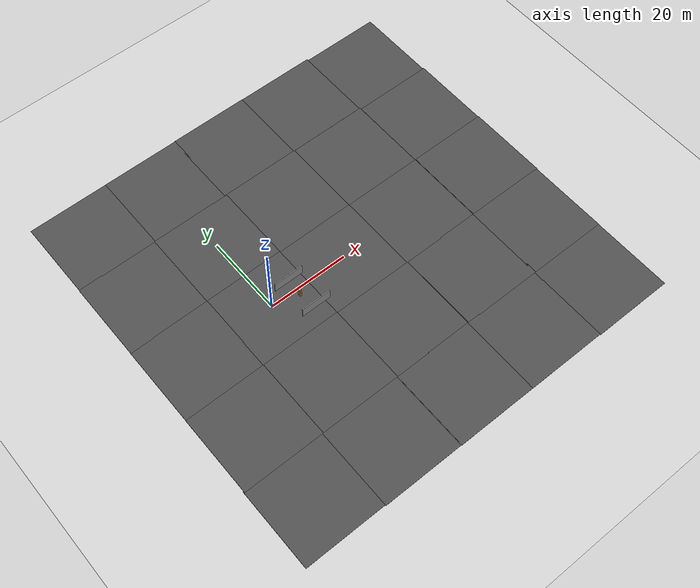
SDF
<sdf version="1.6">
 <world name="default">
  <light name="sun" type="directional">
   <pose>0 0 10 0 -0 0</pose>
   <diffuse>0.8 0.8 0.8 1</diffuse>
   <specular>0.2 0.2 0.2 1</specular>
   <attenuation>
    <range>1000</range>
    <constant>0.9</constant>
    <linear>0.01</linear>
    <quadratic>0.001</quadratic>
   </attenuation>
   <direction>-0.5 0.1 -0.9</direction>
  </light>
  <model name="ground_plane">
   <static>1</static>
   <link name="link">
    <collision name="collision">
     <geometry><plane><normal>0 0 1</normal><size>100 100</size></plane></geometry>
     <surface><friction><ode><mu>100</mu><mu2>50</mu2></ode></friction></surface>
    </collision>
    <visual name="visual">
     <cast_shadows>0</cast_shadows>
     <geometry><plane><normal>0 0 1</normal><size>100 100</size></plane></geometry>
     <material>
      <script><uri>file://media/materials/scripts/gazebo.material</uri><name>Gazebo/Grey</name></script>
     </material>
    </visual>
   </link>
  </model>
  <model name="asphalt_plane">
   <pose>-0.076231 0.037371 0 0 -0 0</pose>
   <static>1</static>
   <link name="link">
    <collision name="collision"><geometry><box><size>20 20 0.1</size></box></geometry></collision>
    <visual name="visual">
     <cast_shadows>0</cast_shadows>
     <geometry><box><size>20 20 0.1</size></box></geometry>
     <material>
      <script>
       <uri>model://asphalt_plane/materials/scripts</uri>
       <uri>model://asphalt_plane/materials/textures</uri>
       <name>vrc/asphalt</name>
      </script>
     </material>
    </visual>
   </link>
  </model>
  <physics name="default_physics" default="0" type="ode">
   <ode>
    <solver>
     <type>quick</type>
     <iters>10</iters>
     <sor>1.3</sor>
     <use_dynamic_moi_rescaling>0</use_dynamic_moi_rescaling>
    </solver>
    <constraints>
     <cfm>0</cfm>
     <erp>0.2</erp>
     <contact_max_correcting_vel>100</contact_max_correcting_vel>
     <contact_surface_layer>0.001</contact_surface_layer>
    </constraints>
   </ode>
   <max_step_size>0.002</max_step_size>
   <real_time_factor>1</real_time_factor>
   <real_time_update_rate>500</real_time_update_rate>
  </physics>
  <gravity>0 0 -9.8066</gravity>
  <magnetic_field>6e-06 2.3e-05 -4.2e-05</magnetic_field>
  <atmosphere type="adiabatic"/>
  <scene><ambient>0.4 0.4 0.4 1</ambient><background>0.7 0.7 0.7 1</background><shadows>1</shadows></scene>
  <spherical_coordinates>
   <surface_model>EARTH_WGS84</surface_model>
   <latitude_deg>0</latitude_deg>
   <longitude_deg>0</longitude_deg>
   <elevation>0</elevation>
   <heading_deg>0</heading_deg>
  </spherical_coordinates>
  <model name="asphalt_plane_clone">
   <static>1</static>
   <link name="link">
    <collision name="collision"><geometry><box><size>20 20 0.1</size></box></geometry></collision>
    <visual name="visual">
     <cast_shadows>0</cast_shadows>
     <geometry><box><size>20 20 0.1</size></box></geometry>
     <material>
      <script>
       <uri>model://asphalt_plane/materials/scripts</uri>
       <uri>model://asphalt_plane/materials/textures</uri>
       <name>vrc/asphalt</name>
      </script>
     </material>
    </visual>
   </link>
   <pose>0.013817 -19.9057 0 0 -0 0</pose>
  </model>
  <model name="asphalt_plane_clone_0">
   <static>1</static>
   <link name="link">
    <collision name="collision"><geometry><box><size>20 20 0.1</size></box></geometry></collision>
    <visual name="visual">
     <cast_shadows>0</cast_shadows>
     <geometry><box><size>20 20 0.1</size></box></geometry>
     <material>
      <script>
       <uri>model://asphalt_plane/materials/scripts</uri>
       <uri>model://asphalt_plane/materials/textures</uri>
       <name>vrc/asphalt</name>
      </script>
     </material>
    </visual>
   </link>
   <pose>-0.044763 19.8547 0 0 -0 0</pose>
  </model>
  <model name="asphalt_plane_clone_1">
   <static>1</static>
   <link name="link">
    <collision name="collision"><geometry><box><size>20 20 0.1</size></box></geometry></collision>
    <visual name="visual">
     <cast_shadows>0</cast_shadows>
     <geometry><box><size>20 20 0.1</size></box></geometry>
     <material>
      <script>
       <uri>model://asphalt_plane/materials/scripts</uri>
       <uri>model://asphalt_plane/materials/textures</uri>
       <name>vrc/asphalt</name>
      </script>
     </material>
    </visual>
   </link>
   <pose>19.9542 19.8571 0 0 -0 0</pose>
  </model>
  <model name="asphalt_plane_clone_2">
   <static>1</static>
   <link name="link">
    <collision name="collision"><geometry><box><size>20 20 0.1</size></box></geometry></collision>
    <visual name="visual">
     <cast_shadows>0</cast_shadows>
     <geometry><box><size>20 20 0.1</size></box></geometry>
     <material>
      <script>
       <uri>model://asphalt_plane/materials/scripts</uri>
       <uri>model://asphalt_plane/materials/textures</uri>
       <name>vrc/asphalt</name>
      </script>
     </material>
    </visual>
   </link>
   <pose>19.9003 -0.111395 0 0 -0 0</pose>
  </model>
  <model name="asphalt_plane_clone_3">
   <static>1</static>
   <link name="link">
    <collision name="collision"><geometry><box><size>20 20 0.1</size></box></geometry></collision>
    <visual name="visual">
     <cast_shadows>0</cast_shadows>
     <geometry><box><size>20 20 0.1</size></box></geometry>
     <material>
      <script>
       <uri>model://asphalt_plane/materials/scripts</uri>
       <uri>model://asphalt_plane/materials/textures</uri>
       <name>vrc/asphalt</name>
      </script>
     </material>
    </visual>
   </link>
   <pose>19.9582 -19.9369 0 0 -0 0</pose>
  </model>
  <model name="asphalt_plane_clone_4">
   <static>1</static>
   <link name="link">
    <collision name="collision"><geometry><box><size>20 20 0.1</size></box></geometry></collision>
    <visual name="visual">
     <cast_shadows>0</cast_shadows>
     <geometry><box><size>20 20 0.1</size></box></geometry>
     <material>
      <script>
       <uri>model://asphalt_plane/materials/scripts</uri>
       <uri>model://asphalt_plane/materials/textures</uri>
       <name>vrc/asphalt</name>
      </script>
     </material>
    </visual>
   </link>
   <pose>-19.9909 -19.9252 0 0 -0 0</pose>
  </model>
  <model name="asphalt_plane_clone_5">
   <static>1</static>
   <link name="link">
    <collision name="collision"><geometry><box><size>20 20 0.1</size></box></geometry></collision>
    <visual name="visual">
     <cast_shadows>0</cast_shadows>
     <geometry><box><size>20 20 0.1</size></box></geometry>
     <material>
      <script>
       <uri>model://asphalt_plane/materials/scripts</uri>
       <uri>model://asphalt_plane/materials/textures</uri>
       <name>vrc/asphalt</name>
      </script>
     </material>
    </visual>
   </link>
   <pose>-19.954 0.062585 0 0 -0 0</pose>
  </model>
  <model name="asphalt_plane_clone_6">
   <static>1</static>
   <link name="link">
    <collision name="collision"><geometry><box><size>20 20 0.1</size></box></geometry></collision>
    <visual name="visual">
     <cast_shadows>0</cast_shadows>
     <geometry><box><size>20 20 0.1</size></box></geometry>
     <material>
      <script>
       <uri>model://asphalt_plane/materials/scripts</uri>
       <uri>model://asphalt_plane/materials/textures</uri>
       <name>vrc/asphalt</name>
      </script>
     </material>
    </visual>
   </link>
   <pose>-19.9182 19.9182 0 0 -0 0</pose>
  </model>
  <model name="asphalt_plane_clone_7">
   <static>1</static>
   <link name="link">
    <collision name="collision"><geometry><box><size>20 20 0.1</size></box></geometry></collision>
    <visual name="visual">
     <cast_shadows>0</cast_shadows>
     <geometry><box><size>20 20 0.1</size></box></geometry>
     <material>
      <script>
       <uri>model://asphalt_plane/materials/scripts</uri>
       <uri>model://asphalt_plane/materials/textures</uri>
       <name>vrc/asphalt</name>
      </script>
     </material>
    </visual>
   </link>
   <pose>40.0111 -19.9805 0 0 -0 0</pose>
  </model>
  <model name="asphalt_plane_clone_8">
   <static>1</static>
   <link name="link">
    <collision name="collision"><geometry><box><size>20 20 0.1</size></box></geometry></collision>
    <visual name="visual">
     <cast_shadows>0</cast_shadows>
     <geometry><box><size>20 20 0.1</size></box></geometry>
     <material>
      <script>
       <uri>model://asphalt_plane/materials/scripts</uri>
       <uri>model://asphalt_plane/materials/textures</uri>
       <name>vrc/asphalt</name>
      </script>
     </material>
    </visual>
   </link>
   <pose>39.7739 -0.180821 0 0 -0 0</pose>
  </model>
  <model name="asphalt_plane_clone_9">
   <static>1</static>
   <link name="link">
    <collision name="collision"><geometry><box><size>20 20 0.1</size></box></geometry></collision>
    <visual name="visual">
     <cast_shadows>0</cast_shadows>
     <geometry><box><size>20 20 0.1</size></box></geometry>
     <material>
      <script>
       <uri>model://asphalt_plane/materials/scripts</uri>
       <uri>model://asphalt_plane/materials/textures</uri>
       <name>vrc/asphalt</name>
      </script>
     </material>
    </visual>
   </link>
   <pose>39.7142 19.7483 0 0 -0 0</pose>
  </model>
  <model name="asphalt_plane_clone_10">
   <static>1</static>
   <link name="link">
    <collision name="collision"><geometry><box><size>20 20 0.1</size></box></geometry></collision>
    <visual name="visual">
     <cast_shadows>0</cast_shadows>
     <geometry><box><size>20 20 0.1</size></box></geometry>
     <material>
      <script>
       <uri>model://asphalt_plane/materials/scripts</uri>
       <uri>model://asphalt_plane/materials/textures</uri>
       <name>vrc/asphalt</name>
      </script>
     </material>
    </visual>
   </link>
   <pose>59.7155 -19.9826 0 0 -0 0</pose>
  </model>
  <model name="asphalt_plane_clone_11">
   <static>1</static>
   <link name="link">
    <collision name="collision"><geometry><box><size>20 20 0.1</size></box></geometry></collision>
    <visual name="visual">
     <cast_shadows>0</cast_shadows>
     <geometry><box><size>20 20 0.1</size></box></geometry>
     <material>
      <script>
       <uri>model://asphalt_plane/materials/scripts</uri>
       <uri>model://asphalt_plane/materials/textures</uri>
       <name>vrc/asphalt</name>
      </script>
     </material>
    </visual>
   </link>
   <pose>59.861 -0.148742 0 0 -0 0</pose>
  </model>
  <model name="asphalt_plane_clone_12">
   <static>1</static>
   <link name="link">
    <collision name="collision"><geometry><box><size>20 20 0.1</size></box></geometry></collision>
    <visual name="visual">
     <cast_shadows>0</cast_shadows>
     <geometry><box><size>20 20 0.1</size></box></geometry>
     <material>
      <script>
       <uri>model://asphalt_plane/materials/scripts</uri>
       <uri>model://asphalt_plane/materials/textures</uri>
       <name>vrc/asphalt</name>
      </script>
     </material>
    </visual>
   </link>
   <pose>59.7223 19.4825 0 0 -0 0</pose>
  </model>
  <model name="asphalt_plane_clone_13">
   <static>1</static>
   <link name="link">
    <collision name="collision"><geometry><box><size>20 20 0.1</size></box></geometry></collision>
    <visual name="visual">
     <cast_shadows>0</cast_shadows>
     <geometry><box><size>20 20 0.1</size></box></geometry>
     <material>
      <script>
       <uri>model://asphalt_plane/materials/scripts</uri>
       <uri>model://asphalt_plane/materials/textures</uri>
       <name>vrc/asphalt</name>
      </script>
     </material>
    </visual>
   </link>
   <pose>59.6505 -39.9751 0 0 -0 0</pose>
  </model>
  <model name="asphalt_plane_clone_14">
   <static>1</static>
   <link name="link">
    <collision name="collision"><geometry><box><size>20 20 0.1</size></box></geometry></collision>
    <visual name="visual">
     <cast_shadows>0</cast_shadows>
     <geometry><box><size>20 20 0.1</size></box></geometry>
     <material>
      <script>
       <uri>model://asphalt_plane/materials/scripts</uri>
       <uri>model://asphalt_plane/materials/textures</uri>
       <name>vrc/asphalt</name>
      </script>
     </material>
    </visual>
   </link>
   <pose>39.7473 -39.8277 0 0 -0 0</pose>
  </model>
  <model name="asphalt_plane_clone_15">
   <static>1</static>
   <link name="link">
    <collision name="collision"><geometry><box><size>20 20 0.1</size></box></geometry></collision>
    <visual name="visual">
     <cast_shadows>0</cast_shadows>
     <geometry><box><size>20 20 0.1</size></box></geometry>
     <material>
      <script>
       <uri>model://asphalt_plane/materials/scripts</uri>
       <uri>model://asphalt_plane/materials/textures</uri>
       <name>vrc/asphalt</name>
      </script>
     </material>
    </visual>
   </link>
   <pose>19.8523 -39.7982 0 0 -0 0</pose>
  </model>
  <model name="asphalt_plane_clone_16">
   <static>1</static>
   <link name="link">
    <collision name="collision"><geometry><box><size>20 20 0.1</size></box></geometry></collision>
    <visual name="visual">
     <cast_shadows>0</cast_shadows>
     <geometry><box><size>20 20 0.1</size></box></geometry>
     <material>
      <script>
       <uri>model://asphalt_plane/materials/scripts</uri>
       <uri>model://asphalt_plane/materials/textures</uri>
       <name>vrc/asphalt</name>
      </script>
     </material>
    </visual>
   </link>
   <pose>-0.244115 -39.7166 0 0 -0 0</pose>
  </model>
  <model name="asphalt_plane_clone_17">
   <static>1</static>
   <link name="link">
    <collision name="collision"><geometry><box><size>20 20 0.1</size></box></geometry></collision>
    <visual name="visual">
     <cast_shadows>0</cast_shadows>
     <geometry><box><size>20 20 0.1</size></box></geometry>
     <material>
      <script>
       <uri>model://asphalt_plane/materials/scripts</uri>
       <uri>model://asphalt_plane/materials/textures</uri>
       <name>vrc/asphalt</name>
      </script>
     </material>
    </visual>
   </link>
   <pose>-20.1655 -39.5155 0 0 -0 0</pose>
  </model>
  <model name="asphalt_plane_clone_14_clone">
   <static>1</static>
   <link name="link">
    <collision name="collision"><geometry><box><size>20 20 0.1</size></box></geometry></collision>
    <visual name="visual">
     <cast_shadows>0</cast_shadows>
     <geometry><box><size>20 20 0.1</size></box></geometry>
     <material>
      <script>
       <uri>model://asphalt_plane/materials/scripts</uri>
       <uri>model://asphalt_plane/materials/textures</uri>
       <name>vrc/asphalt</name>
      </script>
     </material>
    </visual>
   </link>
   <pose>-19.8427 39.7251 0 0 -0 0</pose>
  </model>
  <model name="asphalt_plane_clone_14_clone_0">
   <static>1</static>
   <link name="link">
    <collision name="collision"><geometry><box><size>20 20 0.1</size></box></geometry></collision>
    <visual name="visual">
     <cast_shadows>0</cast_shadows>
     <geometry><box><size>20 20 0.1</size></box></geometry>
     <material>
      <script>
       <uri>model://asphalt_plane/materials/scripts</uri>
       <uri>model://asphalt_plane/materials/textures</uri>
       <name>vrc/asphalt</name>
      </script>
     </material>
    </visual>
   </link>
   <pose>-0.255749 39.7463 0 0 -0 0</pose>
  </model>
  <model name="asphalt_plane_clone_14_clone_1">
   <static>1</static>
   <link name="link">
    <collision name="collision"><geometry><box><size>20 20 0.1</size></box></geometry></collision>
    <visual name="visual">
     <cast_shadows>0</cast_shadows>
     <geometry><box><size>20 20 0.1</size></box></geometry>
     <material>
      <script>
       <uri>model://asphalt_plane/materials/scripts</uri>
       <uri>model://asphalt_plane/materials/textures</uri>
       <name>vrc/asphalt</name>
      </script>
     </material>
    </visual>
   </link>
   <pose>19.4503 39.8337 0 0 -0 0</pose>
  </model>
  <model name="asphalt_plane_clone_14_clone_2">
   <static>1</static>
   <link name="link">
    <collision name="collision"><geometry><box><size>20 20 0.1</size></box></geometry></collision>
    <visual name="visual">
     <cast_shadows>0</cast_shadows>
     <geometry><box><size>20 20 0.1</size></box></geometry>
     <material>
      <script>
       <uri>model://asphalt_plane/materials/scripts</uri>
       <uri>model://asphalt_plane/materials/textures</uri>
       <name>vrc/asphalt</name>
      </script>
     </material>
    </visual>
   </link>
   <pose>39.491 39.7544 0 0 -0 0</pose>
  </model>
  <model name="asphalt_plane_clone_14_clone_3">
   <static>1</static>
   <link name="link">
    <collision name="collision"><geometry><box><size>20 20 0.1</size></box></geometry></collision>
    <visual name="visual">
     <cast_shadows>0</cast_shadows>
     <geometry><box><size>20 20 0.1</size></box></geometry>
     <material>
      <script>
       <uri>model://asphalt_plane/materials/scripts</uri>
       <uri>model://asphalt_plane/materials/textures</uri>
       <name>vrc/asphalt</name>
      </script>
     </material>
    </visual>
   </link>
   <pose>59.4529 39.3338 0 0 -0 0</pose>
  </model>
  <audio><device>default</device></audio>
  <model name="grey_wall">
   <static>1</static>
   <link name="link">
    <pose>0 0 1.4 0 -0 0</pose>
    <collision name="collision"><geometry><box><size>7.5 0.2 2.8</size></box></geometry></collision>
    <visual name="visual">
     <cast_shadows>0</cast_shadows>
     <geometry><box><size>7.5 0.2 2.8</size></box></geometry>
     <material>
      <script>
       <uri>model://grey_wall/materials/scripts</uri>
       <uri>model://grey_wall/materials/textures</uri>
       <name>vrc/grey_wall</name>
      </script>
     </material>
    </visual>
   </link>
   <pose>7.377 -6.04206 0 0 -0 0</pose>
  </model>
  <model name="grey_wall_0">
   <static>1</static>
   <link name="link">
    <pose>0 0 1.4 0 -0 0</pose>
    <collision name="collision"><geometry><box><size>7.5 0.2 2.8</size></box></geometry></collision>
    <visual name="visual">
     <cast_shadows>0</cast_shadows>
     <geometry><box><size>7.5 0.2 2.8</size></box></geometry>
     <material>
      <script>
       <uri>model://grey_wall/materials/scripts</uri>
       <uri>model://grey_wall/materials/textures</uri>
       <name>vrc/grey_wall</name>
      </script>
     </material>
    </visual>
   </link>
   <pose>6.65076 2.64367 0 0 -0 0</pose>
  </model>
  <model name="bookshelf">
   <static>1</static>
   <link name="link">
    <inertial><mass>1</mass></inertial>
    <collision name="back">
     <pose>0 0.005 0.6 0 -0 0</pose>
     <geometry><box><size>0.9 0.01 1.2</size></box></geometry>
    </collision>
    <visual name="visual1">
     <pose>0 0.005 0.6 0 -0 0</pose>
     <geometry><box><size>0.9 0.01 1.2</size></box></geometry>
     <material>
      <script><uri>file://media/materials/scripts/gazebo.material</uri><name>Gazebo/Wood</name></script>
     </material>
    </visual>
    <collision name="left_side">
     <pose>0.45 -0.195 0.6 0 -0 0</pose>
     <geometry><box><size>0.02 0.4 1.2</size></box></geometry>
    </collision>
    <visual name="visual2">
     <pose>0.45 -0.195 0.6 0 -0 0</pose>
     <geometry><box><size>0.02 0.4 1.2</size></box></geometry>
     <material>
      <script><uri>file://media/materials/scripts/gazebo.material</uri><name>Gazebo/Wood</name></script>
     </material>
    </visual>
    <collision name="right_side">
     <pose>-0.45 -0.195 0.6 0 -0 0</pose>
     <geometry><box><size>0.02 0.4 1.2</size></box></geometry>
    </collision>
    <visual name="visual3">
     <pose>-0.45 -0.195 0.6 0 -0 0</pose>
     <geometry><box><size>0.02 0.4 1.2</size></box></geometry>
     <material>
      <script><uri>file://media/materials/scripts/gazebo.material</uri><name>Gazebo/Wood</name></script>
     </material>
    </visual>
    <collision name="bottom">
     <pose>0 -0.195 0.03 0 -0 0</pose>
     <geometry><box><size>0.88 0.4 0.06</size></box></geometry>
    </collision>
    <visual name="visual4">
     <pose>0 -0.195 0.03 0 -0 0</pose>
     <geometry><box><size>0.88 0.4 0.06</size></box></geometry>
     <material>
      <script><uri>file://media/materials/scripts/gazebo.material</uri><name>Gazebo/Wood</name></script>
     </material>
    </visual>
    <collision name="top">
     <pose>0 -0.195 1.19 0 -0 0</pose>
     <geometry><box><size>0.88 0.4 0.02</size></box></geometry>
    </collision>
    <visual name="visual5">
     <pose>0 -0.195 1.19 0 -0 0</pose>
     <geometry><box><size>0.88 0.4 0.02</size></box></geometry>
     <material>
      <script><uri>file://media/materials/scripts/gazebo.material</uri><name>Gazebo/Wood</name></script>
     </material>
    </visual>
    <collision name="low_shelf">
     <pose>0 -0.195 0.43 0 -0 0</pose>
     <geometry><box><size>0.88 0.4 0.02</size></box></geometry>
    </collision>
    <visual name="visual6">
     <pose>0 -0.195 0.43 0 -0 0</pose>
     <geometry><box><size>0.88 0.4 0.02</size></box></geometry>
     <material>
      <script><uri>file://media/materials/scripts/gazebo.material</uri><name>Gazebo/Wood</name></script>
     </material>
    </visual>
    <collision name="high_shelf">
     <pose>0 -0.195 0.8 0 -0 0</pose>
     <geometry><box><size>0.88 0.4 0.02</size></box></geometry>
    </collision>
    <visual name="visual7">
     <pose>0 -0.195 0.8 0 -0 0</pose>
     <geometry><box><size>0.88 0.4 0.02</size></box></geometry>
     <material>
      <script><uri>file://media/materials/scripts/gazebo.material</uri><name>Gazebo/Wood</name></script>
     </material>
    </visual>
   </link>
   <pose>6.66112 -1.51273 0.047289 0 0 -1.6161</pose>
  </model>
  <model name="bookshelf_0">
   <static>1</static>
   <link name="link">
    <inertial><mass>1</mass></inertial>
    <collision name="back">
     <pose>0 0.005 0.6 0 -0 0</pose>
     <geometry><box><size>0.9 0.01 1.2</size></box></geometry>
    </collision>
    <visual name="visual1">
     <pose>0 0.005 0.6 0 -0 0</pose>
     <geometry><box><size>0.9 0.01 1.2</size></box></geometry>
     <material>
      <script><uri>file://media/materials/scripts/gazebo.material</uri><name>Gazebo/Wood</name></script>
     </material>
    </visual>
    <collision name="left_side">
     <pose>0.45 -0.195 0.6 0 -0 0</pose>
     <geometry><box><size>0.02 0.4 1.2</size></box></geometry>
    </collision>
    <visual name="visual2">
     <pose>0.45 -0.195 0.6 0 -0 0</pose>
     <geometry><box><size>0.02 0.4 1.2</size></box></geometry>
     <material>
      <script><uri>file://media/materials/scripts/gazebo.material</uri><name>Gazebo/Wood</name></script>
     </material>
    </visual>
    <collision name="right_side">
     <pose>-0.45 -0.195 0.6 0 -0 0</pose>
     <geometry><box><size>0.02 0.4 1.2</size></box></geometry>
    </collision>
    <visual name="visual3">
     <pose>-0.45 -0.195 0.6 0 -0 0</pose>
     <geometry><box><size>0.02 0.4 1.2</size></box></geometry>
     <material>
      <script><uri>file://media/materials/scripts/gazebo.material</uri><name>Gazebo/Wood</name></script>
     </material>
    </visual>
    <collision name="bottom">
     <pose>0 -0.195 0.03 0 -0 0</pose>
     <geometry><box><size>0.88 0.4 0.06</size></box></geometry>
    </collision>
    <visual name="visual4">
     <pose>0 -0.195 0.03 0 -0 0</pose>
     <geometry><box><size>0.88 0.4 0.06</size></box></geometry>
     <material>
      <script><uri>file://media/materials/scripts/gazebo.material</uri><name>Gazebo/Wood</name></script>
     </material>
    </visual>
    <collision name="top">
     <pose>0 -0.195 1.19 0 -0 0</pose>
     <geometry><box><size>0.88 0.4 0.02</size></box></geometry>
    </collision>
    <visual name="visual5">
     <pose>0 -0.195 1.19 0 -0 0</pose>
     <geometry><box><size>0.88 0.4 0.02</size></box></geometry>
     <material>
      <script><uri>file://media/materials/scripts/gazebo.material</uri><name>Gazebo/Wood</name></script>
     </material>
    </visual>
    <collision name="low_shelf">
     <pose>0 -0.195 0.43 0 -0 0</pose>
     <geometry><box><size>0.88 0.4 0.02</size></box></geometry>
    </collision>
    <visual name="visual6">
     <pose>0 -0.195 0.43 0 -0 0</pose>
     <geometry><box><size>0.88 0.4 0.02</size></box></geometry>
     <material>
      <script><uri>file://media/materials/scripts/gazebo.material</uri><name>Gazebo/Wood</name></script>
     </material>
    </visual>
    <collision name="high_shelf">
     <pose>0 -0.195 0.8 0 -0 0</pose>
     <geometry><box><size>0.88 0.4 0.02</size></box></geometry>
    </collision>
    <visual name="visual7">
     <pose>0 -0.195 0.8 0 -0 0</pose>
     <geometry><box><size>0.88 0.4 0.02</size></box></geometry>
     <material>
      <script><uri>file://media/materials/scripts/gazebo.material</uri><name>Gazebo/Wood</name></script>
     </material>
    </visual>
   </link>
   <pose>6.66215 -1.5003 1.25353 0 0 -1.6232</pose>
  </model>
 </world>
</sdf>
